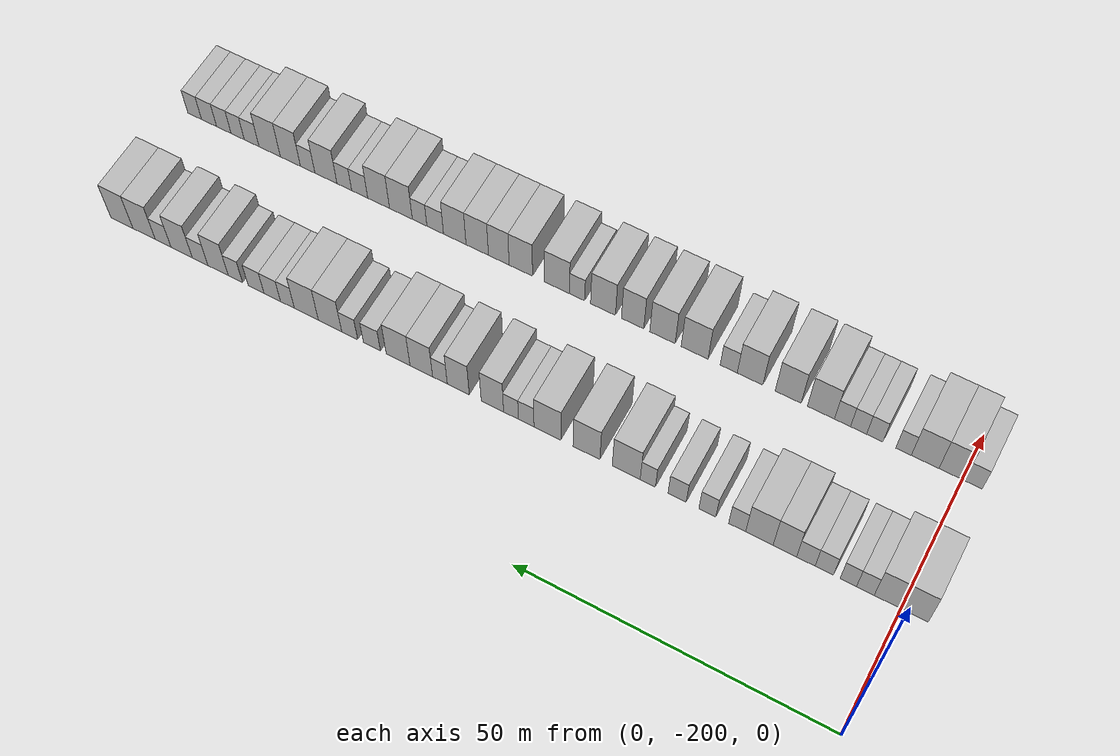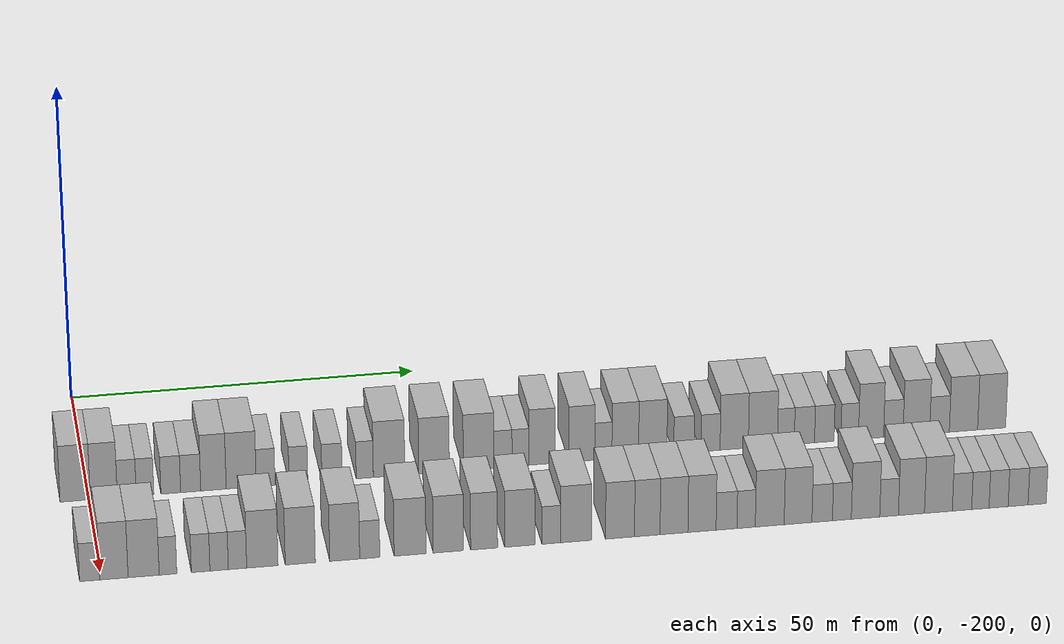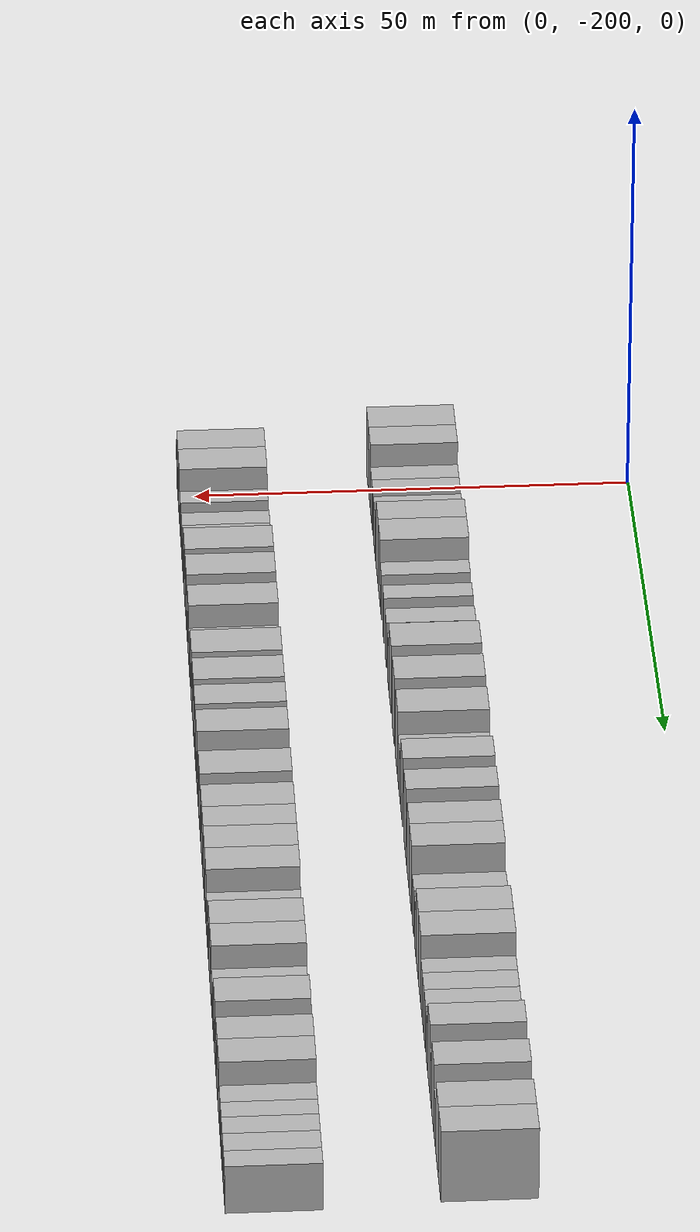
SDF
<sdf version="1.6">
 <world name="default">
  <model name="building_1">
   <static>1</static>
   <pose>25.0000 -201.8715 0 0.000000 0.000000 0.000000</pose>
   <link name="link">
    <pose>0 0 4.50 0 0 0</pose>
    <collision name="collision"><geometry><box><size>10.0000 4.2571 9.0000</size></box></geometry></collision>
    <visual name="visual">
     <cast_shadows>0</cast_shadows>
     <geometry><box><size>10.0000 4.2571 9.0000</size></box></geometry>
     <material>
      <script>
       <uri>model://HANNAS_wall/materials/scripts</uri>
       <uri>model://HANNAS_wall/materials/textures</uri>
       <name>vrc/HANNAS_wall</name>
      </script>
     </material>
    </visual>
   </link>
  </model>
  <model name="building_2">
   <static>1</static>
   <pose>25.0000 -197.8458 0 0.000000 0.000000 0.000000</pose>
   <link name="link">
    <pose>0 0 4.50 0 0 0</pose>
    <collision name="collision"><geometry><box><size>10.0000 3.7942 9.0000</size></box></geometry></collision>
    <visual name="visual">
     <cast_shadows>0</cast_shadows>
     <geometry><box><size>10.0000 3.7942 9.0000</size></box></geometry>
     <material>
      <script>
       <uri>model://HANNAS_wall/materials/scripts</uri>
       <uri>model://HANNAS_wall/materials/textures</uri>
       <name>vrc/HANNAS_wall</name>
      </script>
     </material>
    </visual>
   </link>
  </model>
  <model name="building_3">
   <static>1</static>
   <pose>25.0000 -194.6153 0 0.000000 0.000000 0.000000</pose>
   <link name="link">
    <pose>0 0 3.00 0 0 0</pose>
    <collision name="collision"><geometry><box><size>10.0000 2.6668 6.0000</size></box></geometry></collision>
    <visual name="visual">
     <cast_shadows>0</cast_shadows>
     <geometry><box><size>10.0000 2.6668 6.0000</size></box></geometry>
     <material>
      <script>
       <uri>model://HANNAS_wall/materials/scripts</uri>
       <uri>model://HANNAS_wall/materials/textures</uri>
       <name>vrc/HANNAS_wall</name>
      </script>
     </material>
    </visual>
   </link>
  </model>
  <model name="building_4">
   <static>1</static>
   <pose>25.0000 -192.0383 0 0.000000 0.000000 0.000000</pose>
   <link name="link">
    <pose>0 0 3.00 0 0 0</pose>
    <collision name="collision"><geometry><box><size>10.0000 2.4872 6.0000</size></box></geometry></collision>
    <visual name="visual">
     <cast_shadows>0</cast_shadows>
     <geometry><box><size>10.0000 2.4872 6.0000</size></box></geometry>
     <material>
      <script>
       <uri>model://HANNAS_wall/materials/scripts</uri>
       <uri>model://HANNAS_wall/materials/textures</uri>
       <name>vrc/HANNAS_wall</name>
      </script>
     </material>
    </visual>
   </link>
  </model>
  <model name="building_5">
   <static>1</static>
   <pose>25.0000 -188.4017 0 0.000000 0.000000 0.000000</pose>
   <link name="link">
    <pose>0 0 3.00 0 0 0</pose>
    <collision name="collision"><geometry><box><size>10.0000 2.7860 6.0000</size></box></geometry></collision>
    <visual name="visual">
     <cast_shadows>0</cast_shadows>
     <geometry><box><size>10.0000 2.7860 6.0000</size></box></geometry>
     <material>
      <script>
       <uri>model://HANNAS_wall/materials/scripts</uri>
       <uri>model://HANNAS_wall/materials/textures</uri>
       <name>vrc/HANNAS_wall</name>
      </script>
     </material>
    </visual>
   </link>
  </model>
  <model name="building_6">
   <static>1</static>
   <pose>25.0000 -185.5879 0 0.000000 0.000000 0.000000</pose>
   <link name="link">
    <pose>0 0 3.00 0 0 0</pose>
    <collision name="collision"><geometry><box><size>10.0000 2.8416 6.0000</size></box></geometry></collision>
    <visual name="visual">
     <cast_shadows>0</cast_shadows>
     <geometry><box><size>10.0000 2.8416 6.0000</size></box></geometry>
     <material>
      <script>
       <uri>model://HANNAS_wall/materials/scripts</uri>
       <uri>model://HANNAS_wall/materials/textures</uri>
       <name>vrc/HANNAS_wall</name>
      </script>
     </material>
    </visual>
   </link>
  </model>
  <model name="building_7">
   <static>1</static>
   <pose>25.0000 -182.3640 0 0.000000 0.000000 0.000000</pose>
   <link name="link">
    <pose>0 0 4.50 0 0 0</pose>
    <collision name="collision"><geometry><box><size>10.0000 3.6061 9.0000</size></box></geometry></collision>
    <visual name="visual">
     <cast_shadows>0</cast_shadows>
     <geometry><box><size>10.0000 3.6061 9.0000</size></box></geometry>
     <material>
      <script>
       <uri>model://HANNAS_wall/materials/scripts</uri>
       <uri>model://HANNAS_wall/materials/textures</uri>
       <name>vrc/HANNAS_wall</name>
      </script>
     </material>
    </visual>
   </link>
  </model>
  <model name="building_8">
   <static>1</static>
   <pose>25.0000 -178.4295 0 0.000000 0.000000 0.000000</pose>
   <link name="link">
    <pose>0 0 4.50 0 0 0</pose>
    <collision name="collision"><geometry><box><size>10.0000 4.2630 9.0000</size></box></geometry></collision>
    <visual name="visual">
     <cast_shadows>0</cast_shadows>
     <geometry><box><size>10.0000 4.2630 9.0000</size></box></geometry>
     <material>
      <script>
       <uri>model://HANNAS_wall/materials/scripts</uri>
       <uri>model://HANNAS_wall/materials/textures</uri>
       <name>vrc/HANNAS_wall</name>
      </script>
     </material>
    </visual>
   </link>
  </model>
  <model name="building_9">
   <static>1</static>
   <pose>25.0000 -174.9708 0 0.000000 0.000000 0.000000</pose>
   <link name="link">
    <pose>0 0 3.00 0 0 0</pose>
    <collision name="collision"><geometry><box><size>10.0000 2.6544 6.0000</size></box></geometry></collision>
    <visual name="visual">
     <cast_shadows>0</cast_shadows>
     <geometry><box><size>10.0000 2.6544 6.0000</size></box></geometry>
     <material>
      <script>
       <uri>model://HANNAS_wall/materials/scripts</uri>
       <uri>model://HANNAS_wall/materials/textures</uri>
       <name>vrc/HANNAS_wall</name>
      </script>
     </material>
    </visual>
   </link>
  </model>
  <model name="building_10">
   <static>1</static>
   <pose>25.0000 -170.3099 0 0.000000 0.000000 0.000000</pose>
   <link name="link">
    <pose>0 0 3.00 0 0 0</pose>
    <collision name="collision"><geometry><box><size>10.0000 2.6674 6.0000</size></box></geometry></collision>
    <visual name="visual">
     <cast_shadows>0</cast_shadows>
     <geometry><box><size>10.0000 2.6674 6.0000</size></box></geometry>
     <material>
      <script>
       <uri>model://HANNAS_wall/materials/scripts</uri>
       <uri>model://HANNAS_wall/materials/textures</uri>
       <name>vrc/HANNAS_wall</name>
      </script>
     </material>
    </visual>
   </link>
  </model>
  <model name="building_11">
   <static>1</static>
   <pose>25.0000 -165.5331 0 0.000000 0.000000 0.000000</pose>
   <link name="link">
    <pose>0 0 3.00 0 0 0</pose>
    <collision name="collision"><geometry><box><size>10.0000 2.8862 6.0000</size></box></geometry></collision>
    <visual name="visual">
     <cast_shadows>0</cast_shadows>
     <geometry><box><size>10.0000 2.8862 6.0000</size></box></geometry>
     <material>
      <script>
       <uri>model://HANNAS_wall/materials/scripts</uri>
       <uri>model://HANNAS_wall/materials/textures</uri>
       <name>vrc/HANNAS_wall</name>
      </script>
     </material>
    </visual>
   </link>
  </model>
  <model name="building_12">
   <static>1</static>
   <pose>25.0000 -160.8686 0 0.000000 0.000000 0.000000</pose>
   <link name="link">
    <pose>0 0 3.00 0 0 0</pose>
    <collision name="collision"><geometry><box><size>10.0000 2.4428 6.0000</size></box></geometry></collision>
    <visual name="visual">
     <cast_shadows>0</cast_shadows>
     <geometry><box><size>10.0000 2.4428 6.0000</size></box></geometry>
     <material>
      <script>
       <uri>model://HANNAS_wall/materials/scripts</uri>
       <uri>model://HANNAS_wall/materials/textures</uri>
       <name>vrc/HANNAS_wall</name>
      </script>
     </material>
    </visual>
   </link>
  </model>
  <model name="building_13">
   <static>1</static>
   <pose>25.0000 -157.4011 0 0.000000 0.000000 0.000000</pose>
   <link name="link">
    <pose>0 0 4.50 0 0 0</pose>
    <collision name="collision"><geometry><box><size>10.0000 4.4920 9.0000</size></box></geometry></collision>
    <visual name="visual">
     <cast_shadows>0</cast_shadows>
     <geometry><box><size>10.0000 4.4920 9.0000</size></box></geometry>
     <material>
      <script>
       <uri>model://HANNAS_wall/materials/scripts</uri>
       <uri>model://HANNAS_wall/materials/textures</uri>
       <name>vrc/HANNAS_wall</name>
      </script>
     </material>
    </visual>
   </link>
  </model>
  <model name="building_14">
   <static>1</static>
   <pose>25.0000 -150.9676 0 0.000000 0.000000 0.000000</pose>
   <link name="link">
    <pose>0 0 4.50 0 0 0</pose>
    <collision name="collision"><geometry><box><size>10.0000 4.3750 9.0000</size></box></geometry></collision>
    <visual name="visual">
     <cast_shadows>0</cast_shadows>
     <geometry><box><size>10.0000 4.3750 9.0000</size></box></geometry>
     <material>
      <script>
       <uri>model://HANNAS_wall/materials/scripts</uri>
       <uri>model://HANNAS_wall/materials/textures</uri>
       <name>vrc/HANNAS_wall</name>
      </script>
     </material>
    </visual>
   </link>
  </model>
  <model name="building_15">
   <static>1</static>
   <pose>25.0000 -144.5749 0 0.000000 0.000000 0.000000</pose>
   <link name="link">
    <pose>0 0 4.50 0 0 0</pose>
    <collision name="collision"><geometry><box><size>10.0000 4.4104 9.0000</size></box></geometry></collision>
    <visual name="visual">
     <cast_shadows>0</cast_shadows>
     <geometry><box><size>10.0000 4.4104 9.0000</size></box></geometry>
     <material>
      <script>
       <uri>model://HANNAS_wall/materials/scripts</uri>
       <uri>model://HANNAS_wall/materials/textures</uri>
       <name>vrc/HANNAS_wall</name>
      </script>
     </material>
    </visual>
   </link>
  </model>
  <model name="building_16">
   <static>1</static>
   <pose>25.0000 -141.0750 0 0.000000 0.000000 0.000000</pose>
   <link name="link">
    <pose>0 0 3.00 0 0 0</pose>
    <collision name="collision"><geometry><box><size>10.0000 2.5892 6.0000</size></box></geometry></collision>
    <visual name="visual">
     <cast_shadows>0</cast_shadows>
     <geometry><box><size>10.0000 2.5892 6.0000</size></box></geometry>
     <material>
      <script>
       <uri>model://HANNAS_wall/materials/scripts</uri>
       <uri>model://HANNAS_wall/materials/textures</uri>
       <name>vrc/HANNAS_wall</name>
      </script>
     </material>
    </visual>
   </link>
  </model>
  <model name="building_17">
   <static>1</static>
   <pose>25.0000 -138.5520 0 0.000000 0.000000 0.000000</pose>
   <link name="link">
    <pose>0 0 3.00 0 0 0</pose>
    <collision name="collision"><geometry><box><size>10.0000 2.4569 6.0000</size></box></geometry></collision>
    <visual name="visual">
     <cast_shadows>0</cast_shadows>
     <geometry><box><size>10.0000 2.4569 6.0000</size></box></geometry>
     <material>
      <script>
       <uri>model://HANNAS_wall/materials/scripts</uri>
       <uri>model://HANNAS_wall/materials/textures</uri>
       <name>vrc/HANNAS_wall</name>
      </script>
     </material>
    </visual>
   </link>
  </model>
  <model name="building_18">
   <static>1</static>
   <pose>25.0000 -135.4540 0 0.000000 0.000000 0.000000</pose>
   <link name="link">
    <pose>0 0 4.50 0 0 0</pose>
    <collision name="collision"><geometry><box><size>10.0000 3.7391 9.0000</size></box></geometry></collision>
    <visual name="visual">
     <cast_shadows>0</cast_shadows>
     <geometry><box><size>10.0000 3.7391 9.0000</size></box></geometry>
     <material>
      <script>
       <uri>model://HANNAS_wall/materials/scripts</uri>
       <uri>model://HANNAS_wall/materials/textures</uri>
       <name>vrc/HANNAS_wall</name>
      </script>
     </material>
    </visual>
   </link>
  </model>
  <model name="building_19">
   <static>1</static>
   <pose>25.0000 -129.7280 0 0.000000 0.000000 0.000000</pose>
   <link name="link">
    <pose>0 0 4.50 0 0 0</pose>
    <collision name="collision"><geometry><box><size>10.0000 3.7128 9.0000</size></box></geometry></collision>
    <visual name="visual">
     <cast_shadows>0</cast_shadows>
     <geometry><box><size>10.0000 3.7128 9.0000</size></box></geometry>
     <material>
      <script>
       <uri>model://HANNAS_wall/materials/scripts</uri>
       <uri>model://HANNAS_wall/materials/textures</uri>
       <name>vrc/HANNAS_wall</name>
      </script>
     </material>
    </visual>
   </link>
  </model>
  <model name="building_20">
   <static>1</static>
   <pose>25.0000 -126.6309 0 0.000000 0.000000 0.000000</pose>
   <link name="link">
    <pose>0 0 3.00 0 0 0</pose>
    <collision name="collision"><geometry><box><size>10.0000 2.4814 6.0000</size></box></geometry></collision>
    <visual name="visual">
     <cast_shadows>0</cast_shadows>
     <geometry><box><size>10.0000 2.4814 6.0000</size></box></geometry>
     <material>
      <script>
       <uri>model://HANNAS_wall/materials/scripts</uri>
       <uri>model://HANNAS_wall/materials/textures</uri>
       <name>vrc/HANNAS_wall</name>
      </script>
     </material>
    </visual>
   </link>
  </model>
  <model name="building_21">
   <static>1</static>
   <pose>25.0000 -123.4586 0 0.000000 0.000000 0.000000</pose>
   <link name="link">
    <pose>0 0 4.50 0 0 0</pose>
    <collision name="collision"><geometry><box><size>10.0000 3.8633 9.0000</size></box></geometry></collision>
    <visual name="visual">
     <cast_shadows>0</cast_shadows>
     <geometry><box><size>10.0000 3.8633 9.0000</size></box></geometry>
     <material>
      <script>
       <uri>model://HANNAS_wall/materials/scripts</uri>
       <uri>model://HANNAS_wall/materials/textures</uri>
       <name>vrc/HANNAS_wall</name>
      </script>
     </material>
    </visual>
   </link>
  </model>
  <model name="building_22">
   <static>1</static>
   <pose>25.0000 -119.4799 0 0.000000 0.000000 0.000000</pose>
   <link name="link">
    <pose>0 0 4.50 0 0 0</pose>
    <collision name="collision"><geometry><box><size>10.0000 4.0941 9.0000</size></box></geometry></collision>
    <visual name="visual">
     <cast_shadows>0</cast_shadows>
     <geometry><box><size>10.0000 4.0941 9.0000</size></box></geometry>
     <material>
      <script>
       <uri>model://HANNAS_wall/materials/scripts</uri>
       <uri>model://HANNAS_wall/materials/textures</uri>
       <name>vrc/HANNAS_wall</name>
      </script>
     </material>
    </visual>
   </link>
  </model>
  <model name="building_23">
   <static>1</static>
   <pose>25.0000 -114.9615 0 0.000000 0.000000 0.000000</pose>
   <link name="link">
    <pose>0 0 3.00 0 0 0</pose>
    <collision name="collision"><geometry><box><size>10.0000 2.9427 6.0000</size></box></geometry></collision>
    <visual name="visual">
     <cast_shadows>0</cast_shadows>
     <geometry><box><size>10.0000 2.9427 6.0000</size></box></geometry>
     <material>
      <script>
       <uri>model://HANNAS_wall/materials/scripts</uri>
       <uri>model://HANNAS_wall/materials/textures</uri>
       <name>vrc/HANNAS_wall</name>
      </script>
     </material>
    </visual>
   </link>
  </model>
  <model name="building_24">
   <static>1</static>
   <pose>25.0000 -111.1020 0 0.000000 0.000000 0.000000</pose>
   <link name="link">
    <pose>0 0 3.00 0 0 0</pose>
    <collision name="collision"><geometry><box><size>10.0000 2.7763 6.0000</size></box></geometry></collision>
    <visual name="visual">
     <cast_shadows>0</cast_shadows>
     <geometry><box><size>10.0000 2.7763 6.0000</size></box></geometry>
     <material>
      <script>
       <uri>model://HANNAS_wall/materials/scripts</uri>
       <uri>model://HANNAS_wall/materials/textures</uri>
       <name>vrc/HANNAS_wall</name>
      </script>
     </material>
    </visual>
   </link>
  </model>
  <model name="building_25">
   <static>1</static>
   <pose>25.0000 -107.6616 0 0.000000 0.000000 0.000000</pose>
   <link name="link">
    <pose>0 0 4.50 0 0 0</pose>
    <collision name="collision"><geometry><box><size>10.0000 4.1044 9.0000</size></box></geometry></collision>
    <visual name="visual">
     <cast_shadows>0</cast_shadows>
     <geometry><box><size>10.0000 4.1044 9.0000</size></box></geometry>
     <material>
      <script>
       <uri>model://HANNAS_wall/materials/scripts</uri>
       <uri>model://HANNAS_wall/materials/textures</uri>
       <name>vrc/HANNAS_wall</name>
      </script>
     </material>
    </visual>
   </link>
  </model>
  <model name="building_26">
   <static>1</static>
   <pose>25.0000 -103.4904 0 0.000000 0.000000 0.000000</pose>
   <link name="link">
    <pose>0 0 4.50 0 0 0</pose>
    <collision name="collision"><geometry><box><size>10.0000 4.2381 9.0000</size></box></geometry></collision>
    <visual name="visual">
     <cast_shadows>0</cast_shadows>
     <geometry><box><size>10.0000 4.2381 9.0000</size></box></geometry>
     <material>
      <script>
       <uri>model://HANNAS_wall/materials/scripts</uri>
       <uri>model://HANNAS_wall/materials/textures</uri>
       <name>vrc/HANNAS_wall</name>
      </script>
     </material>
    </visual>
   </link>
  </model>
  <model name="building_27">
   <static>1</static>
   <pose>25.0000 -100.1394 0 0.000000 0.000000 0.000000</pose>
   <link name="link">
    <pose>0 0 3.00 0 0 0</pose>
    <collision name="collision"><geometry><box><size>10.0000 2.4638 6.0000</size></box></geometry></collision>
    <visual name="visual">
     <cast_shadows>0</cast_shadows>
     <geometry><box><size>10.0000 2.4638 6.0000</size></box></geometry>
     <material>
      <script>
       <uri>model://HANNAS_wall/materials/scripts</uri>
       <uri>model://HANNAS_wall/materials/textures</uri>
       <name>vrc/HANNAS_wall</name>
      </script>
     </material>
    </visual>
   </link>
  </model>
  <model name="building_28">
   <static>1</static>
   <pose>25.0000 -97.4309 0 0.000000 0.000000 0.000000</pose>
   <link name="link">
    <pose>0 0 3.00 0 0 0</pose>
    <collision name="collision"><geometry><box><size>10.0000 2.9532 6.0000</size></box></geometry></collision>
    <visual name="visual">
     <cast_shadows>0</cast_shadows>
     <geometry><box><size>10.0000 2.9532 6.0000</size></box></geometry>
     <material>
      <script>
       <uri>model://HANNAS_wall/materials/scripts</uri>
       <uri>model://HANNAS_wall/materials/textures</uri>
       <name>vrc/HANNAS_wall</name>
      </script>
     </material>
    </visual>
   </link>
  </model>
  <model name="building_29">
   <static>1</static>
   <pose>25.0000 -94.5324 0 0.000000 0.000000 0.000000</pose>
   <link name="link">
    <pose>0 0 3.00 0 0 0</pose>
    <collision name="collision"><geometry><box><size>10.0000 2.8439 6.0000</size></box></geometry></collision>
    <visual name="visual">
     <cast_shadows>0</cast_shadows>
     <geometry><box><size>10.0000 2.8439 6.0000</size></box></geometry>
     <material>
      <script>
       <uri>model://HANNAS_wall/materials/scripts</uri>
       <uri>model://HANNAS_wall/materials/textures</uri>
       <name>vrc/HANNAS_wall</name>
      </script>
     </material>
    </visual>
   </link>
  </model>
  <model name="building_30">
   <static>1</static>
   <pose>25.0000 -90.8245 0 0.000000 0.000000 0.000000</pose>
   <link name="link">
    <pose>0 0 3.00 0 0 0</pose>
    <collision name="collision"><geometry><box><size>10.0000 2.5719 6.0000</size></box></geometry></collision>
    <visual name="visual">
     <cast_shadows>0</cast_shadows>
     <geometry><box><size>10.0000 2.5719 6.0000</size></box></geometry>
     <material>
      <script>
       <uri>model://HANNAS_wall/materials/scripts</uri>
       <uri>model://HANNAS_wall/materials/textures</uri>
       <name>vrc/HANNAS_wall</name>
      </script>
     </material>
    </visual>
   </link>
  </model>
  <model name="building_31">
   <static>1</static>
   <pose>25.0000 -87.6976 0 0.000000 0.000000 0.000000</pose>
   <link name="link">
    <pose>0 0 4.50 0 0 0</pose>
    <collision name="collision"><geometry><box><size>10.0000 3.6820 9.0000</size></box></geometry></collision>
    <visual name="visual">
     <cast_shadows>0</cast_shadows>
     <geometry><box><size>10.0000 3.6820 9.0000</size></box></geometry>
     <material>
      <script>
       <uri>model://HANNAS_wall/materials/scripts</uri>
       <uri>model://HANNAS_wall/materials/textures</uri>
       <name>vrc/HANNAS_wall</name>
      </script>
     </material>
    </visual>
   </link>
  </model>
  <model name="building_32">
   <static>1</static>
   <pose>25.0000 -84.4292 0 0.000000 0.000000 0.000000</pose>
   <link name="link">
    <pose>0 0 3.00 0 0 0</pose>
    <collision name="collision"><geometry><box><size>10.0000 2.8549 6.0000</size></box></geometry></collision>
    <visual name="visual">
     <cast_shadows>0</cast_shadows>
     <geometry><box><size>10.0000 2.8549 6.0000</size></box></geometry>
     <material>
      <script>
       <uri>model://HANNAS_wall/materials/scripts</uri>
       <uri>model://HANNAS_wall/materials/textures</uri>
       <name>vrc/HANNAS_wall</name>
      </script>
     </material>
    </visual>
   </link>
  </model>
  <model name="building_33">
   <static>1</static>
   <pose>25.0000 -81.0458 0 0.000000 0.000000 0.000000</pose>
   <link name="link">
    <pose>0 0 4.50 0 0 0</pose>
    <collision name="collision"><geometry><box><size>10.0000 3.9118 9.0000</size></box></geometry></collision>
    <visual name="visual">
     <cast_shadows>0</cast_shadows>
     <geometry><box><size>10.0000 3.9118 9.0000</size></box></geometry>
     <material>
      <script>
       <uri>model://HANNAS_wall/materials/scripts</uri>
       <uri>model://HANNAS_wall/materials/textures</uri>
       <name>vrc/HANNAS_wall</name>
      </script>
     </material>
    </visual>
   </link>
  </model>
  <model name="building_34">
   <static>1</static>
   <pose>25.0000 -77.6416 0 0.000000 0.000000 0.000000</pose>
   <link name="link">
    <pose>0 0 3.00 0 0 0</pose>
    <collision name="collision"><geometry><box><size>10.0000 2.8966 6.0000</size></box></geometry></collision>
    <visual name="visual">
     <cast_shadows>0</cast_shadows>
     <geometry><box><size>10.0000 2.8966 6.0000</size></box></geometry>
     <material>
      <script>
       <uri>model://HANNAS_wall/materials/scripts</uri>
       <uri>model://HANNAS_wall/materials/textures</uri>
       <name>vrc/HANNAS_wall</name>
      </script>
     </material>
    </visual>
   </link>
  </model>
  <model name="building_35">
   <static>1</static>
   <pose>25.0000 -74.1126 0 0.000000 0.000000 0.000000</pose>
   <link name="link">
    <pose>0 0 4.50 0 0 0</pose>
    <collision name="collision"><geometry><box><size>10.0000 4.1612 9.0000</size></box></geometry></collision>
    <visual name="visual">
     <cast_shadows>0</cast_shadows>
     <geometry><box><size>10.0000 4.1612 9.0000</size></box></geometry>
     <material>
      <script>
       <uri>model://HANNAS_wall/materials/scripts</uri>
       <uri>model://HANNAS_wall/materials/textures</uri>
       <name>vrc/HANNAS_wall</name>
      </script>
     </material>
    </visual>
   </link>
  </model>
  <model name="building_36">
   <static>1</static>
   <pose>25.0000 -69.9689 0 0.000000 0.000000 0.000000</pose>
   <link name="link">
    <pose>0 0 4.50 0 0 0</pose>
    <collision name="collision"><geometry><box><size>10.0000 4.1262 9.0000</size></box></geometry></collision>
    <visual name="visual">
     <cast_shadows>0</cast_shadows>
     <geometry><box><size>10.0000 4.1262 9.0000</size></box></geometry>
     <material>
      <script>
       <uri>model://HANNAS_wall/materials/scripts</uri>
       <uri>model://HANNAS_wall/materials/textures</uri>
       <name>vrc/HANNAS_wall</name>
      </script>
     </material>
    </visual>
   </link>
  </model>
  <model name="building_105">
   <static>1</static>
   <pose>47.0000 -201.6299 0 0.000000 0.000000 0.000000</pose>
   <link name="link">
    <pose>0 0 3.00 0 0 0</pose>
    <collision name="collision"><geometry><box><size>10.0000 2.7403 6.0000</size></box></geometry></collision>
    <visual name="visual">
     <cast_shadows>0</cast_shadows>
     <geometry><box><size>10.0000 2.7403 6.0000</size></box></geometry>
     <material>
      <script>
       <uri>model://HANNAS_wall/materials/scripts</uri>
       <uri>model://HANNAS_wall/materials/textures</uri>
       <name>vrc/HANNAS_wall</name>
      </script>
     </material>
    </visual>
   </link>
  </model>
  <model name="building_106">
   <static>1</static>
   <pose>47.0000 -198.3048 0 0.000000 0.000000 0.000000</pose>
   <link name="link">
    <pose>0 0 4.50 0 0 0</pose>
    <collision name="collision"><geometry><box><size>10.0000 3.9098 9.0000</size></box></geometry></collision>
    <visual name="visual">
     <cast_shadows>0</cast_shadows>
     <geometry><box><size>10.0000 3.9098 9.0000</size></box></geometry>
     <material>
      <script>
       <uri>model://HANNAS_wall/materials/scripts</uri>
       <uri>model://HANNAS_wall/materials/textures</uri>
       <name>vrc/HANNAS_wall</name>
      </script>
     </material>
    </visual>
   </link>
  </model>
  <model name="building_107">
   <static>1</static>
   <pose>47.0000 -194.2144 0 0.000000 0.000000 0.000000</pose>
   <link name="link">
    <pose>0 0 4.50 0 0 0</pose>
    <collision name="collision"><geometry><box><size>10.0000 4.2709 9.0000</size></box></geometry></collision>
    <visual name="visual">
     <cast_shadows>0</cast_shadows>
     <geometry><box><size>10.0000 4.2709 9.0000</size></box></geometry>
     <material>
      <script>
       <uri>model://HANNAS_wall/materials/scripts</uri>
       <uri>model://HANNAS_wall/materials/textures</uri>
       <name>vrc/HANNAS_wall</name>
      </script>
     </material>
    </visual>
   </link>
  </model>
  <model name="building_108">
   <static>1</static>
   <pose>47.0000 -190.8659 0 0.000000 0.000000 0.000000</pose>
   <link name="link">
    <pose>0 0 3.00 0 0 0</pose>
    <collision name="collision"><geometry><box><size>10.0000 2.4263 6.0000</size></box></geometry></collision>
    <visual name="visual">
     <cast_shadows>0</cast_shadows>
     <geometry><box><size>10.0000 2.4263 6.0000</size></box></geometry>
     <material>
      <script>
       <uri>model://HANNAS_wall/materials/scripts</uri>
       <uri>model://HANNAS_wall/materials/textures</uri>
       <name>vrc/HANNAS_wall</name>
      </script>
     </material>
    </visual>
   </link>
  </model>
  <model name="building_109">
   <static>1</static>
   <pose>47.0000 -186.3735 0 0.000000 0.000000 0.000000</pose>
   <link name="link">
    <pose>0 0 3.00 0 0 0</pose>
    <collision name="collision"><geometry><box><size>10.0000 2.5584 6.0000</size></box></geometry></collision>
    <visual name="visual">
     <cast_shadows>0</cast_shadows>
     <geometry><box><size>10.0000 2.5584 6.0000</size></box></geometry>
     <material>
      <script>
       <uri>model://HANNAS_wall/materials/scripts</uri>
       <uri>model://HANNAS_wall/materials/textures</uri>
       <name>vrc/HANNAS_wall</name>
      </script>
     </material>
    </visual>
   </link>
  </model>
  <model name="building_110">
   <static>1</static>
   <pose>47.0000 -183.8255 0 0.000000 0.000000 0.000000</pose>
   <link name="link">
    <pose>0 0 3.00 0 0 0</pose>
    <collision name="collision"><geometry><box><size>10.0000 2.5377 6.0000</size></box></geometry></collision>
    <visual name="visual">
     <cast_shadows>0</cast_shadows>
     <geometry><box><size>10.0000 2.5377 6.0000</size></box></geometry>
     <material>
      <script>
       <uri>model://HANNAS_wall/materials/scripts</uri>
       <uri>model://HANNAS_wall/materials/textures</uri>
       <name>vrc/HANNAS_wall</name>
      </script>
     </material>
    </visual>
   </link>
  </model>
  <model name="building_111">
   <static>1</static>
   <pose>47.0000 -181.2904 0 0.000000 0.000000 0.000000</pose>
   <link name="link">
    <pose>0 0 3.00 0 0 0</pose>
    <collision name="collision"><geometry><box><size>10.0000 2.5325 6.0000</size></box></geometry></collision>
    <visual name="visual">
     <cast_shadows>0</cast_shadows>
     <geometry><box><size>10.0000 2.5325 6.0000</size></box></geometry>
     <material>
      <script>
       <uri>model://HANNAS_wall/materials/scripts</uri>
       <uri>model://HANNAS_wall/materials/textures</uri>
       <name>vrc/HANNAS_wall</name>
      </script>
     </material>
    </visual>
   </link>
  </model>
  <model name="building_112">
   <static>1</static>
   <pose>47.0000 -177.8555 0 0.000000 0.000000 0.000000</pose>
   <link name="link">
    <pose>0 0 4.50 0 0 0</pose>
    <collision name="collision"><geometry><box><size>10.0000 4.3372 9.0000</size></box></geometry></collision>
    <visual name="visual">
     <cast_shadows>0</cast_shadows>
     <geometry><box><size>10.0000 4.3372 9.0000</size></box></geometry>
     <material>
      <script>
       <uri>model://HANNAS_wall/materials/scripts</uri>
       <uri>model://HANNAS_wall/materials/textures</uri>
       <name>vrc/HANNAS_wall</name>
      </script>
     </material>
    </visual>
   </link>
  </model>
  <model name="building_113">
   <static>1</static>
   <pose>47.0000 -172.6046 0 0.000000 0.000000 0.000000</pose>
   <link name="link">
    <pose>0 0 4.50 0 0 0</pose>
    <collision name="collision"><geometry><box><size>10.0000 4.1647 9.0000</size></box></geometry></collision>
    <visual name="visual">
     <cast_shadows>0</cast_shadows>
     <geometry><box><size>10.0000 4.1647 9.0000</size></box></geometry>
     <material>
      <script>
       <uri>model://HANNAS_wall/materials/scripts</uri>
       <uri>model://HANNAS_wall/materials/textures</uri>
       <name>vrc/HANNAS_wall</name>
      </script>
     </material>
    </visual>
   </link>
  </model>
  <model name="building_114">
   <static>1</static>
   <pose>47.0000 -166.4464 0 0.000000 0.000000 0.000000</pose>
   <link name="link">
    <pose>0 0 4.50 0 0 0</pose>
    <collision name="collision"><geometry><box><size>10.0000 4.1516 9.0000</size></box></geometry></collision>
    <visual name="visual">
     <cast_shadows>0</cast_shadows>
     <geometry><box><size>10.0000 4.1516 9.0000</size></box></geometry>
     <material>
      <script>
       <uri>model://HANNAS_wall/materials/scripts</uri>
       <uri>model://HANNAS_wall/materials/textures</uri>
       <name>vrc/HANNAS_wall</name>
      </script>
     </material>
    </visual>
   </link>
  </model>
  <model name="building_115">
   <static>1</static>
   <pose>47.0000 -162.9767 0 0.000000 0.000000 0.000000</pose>
   <link name="link">
    <pose>0 0 3.00 0 0 0</pose>
    <collision name="collision"><geometry><box><size>10.0000 2.7878 6.0000</size></box></geometry></collision>
    <visual name="visual">
     <cast_shadows>0</cast_shadows>
     <geometry><box><size>10.0000 2.7878 6.0000</size></box></geometry>
     <material>
      <script>
       <uri>model://HANNAS_wall/materials/scripts</uri>
       <uri>model://HANNAS_wall/materials/textures</uri>
       <name>vrc/HANNAS_wall</name>
      </script>
     </material>
    </visual>
   </link>
  </model>
  <model name="building_116">
   <static>1</static>
   <pose>47.0000 -157.3597 0 0.000000 0.000000 0.000000</pose>
   <link name="link">
    <pose>0 0 4.50 0 0 0</pose>
    <collision name="collision"><geometry><box><size>10.0000 4.4462 9.0000</size></box></geometry></collision>
    <visual name="visual">
     <cast_shadows>0</cast_shadows>
     <geometry><box><size>10.0000 4.4462 9.0000</size></box></geometry>
     <material>
      <script>
       <uri>model://HANNAS_wall/materials/scripts</uri>
       <uri>model://HANNAS_wall/materials/textures</uri>
       <name>vrc/HANNAS_wall</name>
      </script>
     </material>
    </visual>
   </link>
  </model>
  <model name="building_117">
   <static>1</static>
   <pose>47.0000 -152.0263 0 0.000000 0.000000 0.000000</pose>
   <link name="link">
    <pose>0 0 4.50 0 0 0</pose>
    <collision name="collision"><geometry><box><size>10.0000 4.2205 9.0000</size></box></geometry></collision>
    <visual name="visual">
     <cast_shadows>0</cast_shadows>
     <geometry><box><size>10.0000 4.2205 9.0000</size></box></geometry>
     <material>
      <script>
       <uri>model://HANNAS_wall/materials/scripts</uri>
       <uri>model://HANNAS_wall/materials/textures</uri>
       <name>vrc/HANNAS_wall</name>
      </script>
     </material>
    </visual>
   </link>
  </model>
  <model name="building_118">
   <static>1</static>
   <pose>47.0000 -147.0375 0 0.000000 0.000000 0.000000</pose>
   <link name="link">
    <pose>0 0 4.50 0 0 0</pose>
    <collision name="collision"><geometry><box><size>10.0000 3.7571 9.0000</size></box></geometry></collision>
    <visual name="visual">
     <cast_shadows>0</cast_shadows>
     <geometry><box><size>10.0000 3.7571 9.0000</size></box></geometry>
     <material>
      <script>
       <uri>model://HANNAS_wall/materials/scripts</uri>
       <uri>model://HANNAS_wall/materials/textures</uri>
       <name>vrc/HANNAS_wall</name>
      </script>
     </material>
    </visual>
   </link>
  </model>
  <model name="building_119">
   <static>1</static>
   <pose>47.0000 -142.0481 0 0.000000 0.000000 0.000000</pose>
   <link name="link">
    <pose>0 0 4.50 0 0 0</pose>
    <collision name="collision"><geometry><box><size>10.0000 4.2217 9.0000</size></box></geometry></collision>
    <visual name="visual">
     <cast_shadows>0</cast_shadows>
     <geometry><box><size>10.0000 4.2217 9.0000</size></box></geometry>
     <material>
      <script>
       <uri>model://HANNAS_wall/materials/scripts</uri>
       <uri>model://HANNAS_wall/materials/textures</uri>
       <name>vrc/HANNAS_wall</name>
      </script>
     </material>
    </visual>
   </link>
  </model>
  <model name="building_120">
   <static>1</static>
   <pose>47.0000 -137.6356 0 0.000000 0.000000 0.000000</pose>
   <link name="link">
    <pose>0 0 3.00 0 0 0</pose>
    <collision name="collision"><geometry><box><size>10.0000 2.6033 6.0000</size></box></geometry></collision>
    <visual name="visual">
     <cast_shadows>0</cast_shadows>
     <geometry><box><size>10.0000 2.6033 6.0000</size></box></geometry>
     <material>
      <script>
       <uri>model://HANNAS_wall/materials/scripts</uri>
       <uri>model://HANNAS_wall/materials/textures</uri>
       <name>vrc/HANNAS_wall</name>
      </script>
     </material>
    </visual>
   </link>
  </model>
  <model name="building_121">
   <static>1</static>
   <pose>47.0000 -134.1650 0 0.000000 0.000000 0.000000</pose>
   <link name="link">
    <pose>0 0 4.50 0 0 0</pose>
    <collision name="collision"><geometry><box><size>10.0000 4.3380 9.0000</size></box></geometry></collision>
    <visual name="visual">
     <cast_shadows>0</cast_shadows>
     <geometry><box><size>10.0000 4.3380 9.0000</size></box></geometry>
     <material>
      <script>
       <uri>model://HANNAS_wall/materials/scripts</uri>
       <uri>model://HANNAS_wall/materials/textures</uri>
       <name>vrc/HANNAS_wall</name>
      </script>
     </material>
    </visual>
   </link>
  </model>
  <model name="building_122">
   <static>1</static>
   <pose>47.0000 -127.9601 0 0.000000 0.000000 0.000000</pose>
   <link name="link">
    <pose>0 0 4.50 0 0 0</pose>
    <collision name="collision"><geometry><box><size>10.0000 4.0719 9.0000</size></box></geometry></collision>
    <visual name="visual">
     <cast_shadows>0</cast_shadows>
     <geometry><box><size>10.0000 4.0719 9.0000</size></box></geometry>
     <material>
      <script>
       <uri>model://HANNAS_wall/materials/scripts</uri>
       <uri>model://HANNAS_wall/materials/textures</uri>
       <name>vrc/HANNAS_wall</name>
      </script>
     </material>
    </visual>
   </link>
  </model>
  <model name="building_123">
   <static>1</static>
   <pose>47.0000 -124.1219 0 0.000000 0.000000 0.000000</pose>
   <link name="link">
    <pose>0 0 4.50 0 0 0</pose>
    <collision name="collision"><geometry><box><size>10.0000 3.6044 9.0000</size></box></geometry></collision>
    <visual name="visual">
     <cast_shadows>0</cast_shadows>
     <geometry><box><size>10.0000 3.6044 9.0000</size></box></geometry>
     <material>
      <script>
       <uri>model://HANNAS_wall/materials/scripts</uri>
       <uri>model://HANNAS_wall/materials/textures</uri>
       <name>vrc/HANNAS_wall</name>
      </script>
     </material>
    </visual>
   </link>
  </model>
  <model name="building_124">
   <static>1</static>
   <pose>47.0000 -120.3532 0 0.000000 0.000000 0.000000</pose>
   <link name="link">
    <pose>0 0 4.50 0 0 0</pose>
    <collision name="collision"><geometry><box><size>10.0000 3.9330 9.0000</size></box></geometry></collision>
    <visual name="visual">
     <cast_shadows>0</cast_shadows>
     <geometry><box><size>10.0000 3.9330 9.0000</size></box></geometry>
     <material>
      <script>
       <uri>model://HANNAS_wall/materials/scripts</uri>
       <uri>model://HANNAS_wall/materials/textures</uri>
       <name>vrc/HANNAS_wall</name>
      </script>
     </material>
    </visual>
   </link>
  </model>
  <model name="building_125">
   <static>1</static>
   <pose>47.0000 -116.3970 0 0.000000 0.000000 0.000000</pose>
   <link name="link">
    <pose>0 0 4.50 0 0 0</pose>
    <collision name="collision"><geometry><box><size>10.0000 3.9794 9.0000</size></box></geometry></collision>
    <visual name="visual">
     <cast_shadows>0</cast_shadows>
     <geometry><box><size>10.0000 3.9794 9.0000</size></box></geometry>
     <material>
      <script>
       <uri>model://HANNAS_wall/materials/scripts</uri>
       <uri>model://HANNAS_wall/materials/textures</uri>
       <name>vrc/HANNAS_wall</name>
      </script>
     </material>
    </visual>
   </link>
  </model>
  <model name="building_126">
   <static>1</static>
   <pose>47.0000 -112.9272 0 0.000000 0.000000 0.000000</pose>
   <link name="link">
    <pose>0 0 3.00 0 0 0</pose>
    <collision name="collision"><geometry><box><size>10.0000 2.9603 6.0000</size></box></geometry></collision>
    <visual name="visual">
     <cast_shadows>0</cast_shadows>
     <geometry><box><size>10.0000 2.9603 6.0000</size></box></geometry>
     <material>
      <script>
       <uri>model://HANNAS_wall/materials/scripts</uri>
       <uri>model://HANNAS_wall/materials/textures</uri>
       <name>vrc/HANNAS_wall</name>
      </script>
     </material>
    </visual>
   </link>
  </model>
  <model name="building_127">
   <static>1</static>
   <pose>47.0000 -110.1485 0 0.000000 0.000000 0.000000</pose>
   <link name="link">
    <pose>0 0 3.00 0 0 0</pose>
    <collision name="collision"><geometry><box><size>10.0000 2.5971 6.0000</size></box></geometry></collision>
    <visual name="visual">
     <cast_shadows>0</cast_shadows>
     <geometry><box><size>10.0000 2.5971 6.0000</size></box></geometry>
     <material>
      <script>
       <uri>model://HANNAS_wall/materials/scripts</uri>
       <uri>model://HANNAS_wall/materials/textures</uri>
       <name>vrc/HANNAS_wall</name>
      </script>
     </material>
    </visual>
   </link>
  </model>
  <model name="building_128">
   <static>1</static>
   <pose>47.0000 -106.8024 0 0.000000 0.000000 0.000000</pose>
   <link name="link">
    <pose>0 0 4.50 0 0 0</pose>
    <collision name="collision"><geometry><box><size>10.0000 4.0951 9.0000</size></box></geometry></collision>
    <visual name="visual">
     <cast_shadows>0</cast_shadows>
     <geometry><box><size>10.0000 4.0951 9.0000</size></box></geometry>
     <material>
      <script>
       <uri>model://HANNAS_wall/materials/scripts</uri>
       <uri>model://HANNAS_wall/materials/textures</uri>
       <name>vrc/HANNAS_wall</name>
      </script>
     </material>
    </visual>
   </link>
  </model>
  <model name="building_129">
   <static>1</static>
   <pose>47.0000 -102.7803 0 0.000000 0.000000 0.000000</pose>
   <link name="link">
    <pose>0 0 4.50 0 0 0</pose>
    <collision name="collision"><geometry><box><size>10.0000 3.9491 9.0000</size></box></geometry></collision>
    <visual name="visual">
     <cast_shadows>0</cast_shadows>
     <geometry><box><size>10.0000 3.9491 9.0000</size></box></geometry>
     <material>
      <script>
       <uri>model://HANNAS_wall/materials/scripts</uri>
       <uri>model://HANNAS_wall/materials/textures</uri>
       <name>vrc/HANNAS_wall</name>
      </script>
     </material>
    </visual>
   </link>
  </model>
  <model name="building_130">
   <static>1</static>
   <pose>47.0000 -99.3492 0 0.000000 0.000000 0.000000</pose>
   <link name="link">
    <pose>0 0 3.00 0 0 0</pose>
    <collision name="collision"><geometry><box><size>10.0000 2.9129 6.0000</size></box></geometry></collision>
    <visual name="visual">
     <cast_shadows>0</cast_shadows>
     <geometry><box><size>10.0000 2.9129 6.0000</size></box></geometry>
     <material>
      <script>
       <uri>model://HANNAS_wall/materials/scripts</uri>
       <uri>model://HANNAS_wall/materials/textures</uri>
       <name>vrc/HANNAS_wall</name>
      </script>
     </material>
    </visual>
   </link>
  </model>
  <model name="building_131">
   <static>1</static>
   <pose>47.0000 -96.5466 0 0.000000 0.000000 0.000000</pose>
   <link name="link">
    <pose>0 0 3.00 0 0 0</pose>
    <collision name="collision"><geometry><box><size>10.0000 2.6924 6.0000</size></box></geometry></collision>
    <visual name="visual">
     <cast_shadows>0</cast_shadows>
     <geometry><box><size>10.0000 2.6924 6.0000</size></box></geometry>
     <material>
      <script>
       <uri>model://HANNAS_wall/materials/scripts</uri>
       <uri>model://HANNAS_wall/materials/textures</uri>
       <name>vrc/HANNAS_wall</name>
      </script>
     </material>
    </visual>
   </link>
  </model>
  <model name="building_132">
   <static>1</static>
   <pose>47.0000 -93.1731 0 0.000000 0.000000 0.000000</pose>
   <link name="link">
    <pose>0 0 4.50 0 0 0</pose>
    <collision name="collision"><geometry><box><size>10.0000 4.0545 9.0000</size></box></geometry></collision>
    <visual name="visual">
     <cast_shadows>0</cast_shadows>
     <geometry><box><size>10.0000 4.0545 9.0000</size></box></geometry>
     <material>
      <script>
       <uri>model://HANNAS_wall/materials/scripts</uri>
       <uri>model://HANNAS_wall/materials/textures</uri>
       <name>vrc/HANNAS_wall</name>
      </script>
     </material>
    </visual>
   </link>
  </model>
  <model name="building_133">
   <static>1</static>
   <pose>47.0000 -89.8118 0 0.000000 0.000000 0.000000</pose>
   <link name="link">
    <pose>0 0 3.00 0 0 0</pose>
    <collision name="collision"><geometry><box><size>10.0000 2.6682 6.0000</size></box></geometry></collision>
    <visual name="visual">
     <cast_shadows>0</cast_shadows>
     <geometry><box><size>10.0000 2.6682 6.0000</size></box></geometry>
     <material>
      <script>
       <uri>model://HANNAS_wall/materials/scripts</uri>
       <uri>model://HANNAS_wall/materials/textures</uri>
       <name>vrc/HANNAS_wall</name>
      </script>
     </material>
    </visual>
   </link>
  </model>
  <model name="building_134">
   <static>1</static>
   <pose>47.0000 -86.6137 0 0.000000 0.000000 0.000000</pose>
   <link name="link">
    <pose>0 0 4.50 0 0 0</pose>
    <collision name="collision"><geometry><box><size>10.0000 3.7279 9.0000</size></box></geometry></collision>
    <visual name="visual">
     <cast_shadows>0</cast_shadows>
     <geometry><box><size>10.0000 3.7279 9.0000</size></box></geometry>
     <material>
      <script>
       <uri>model://HANNAS_wall/materials/scripts</uri>
       <uri>model://HANNAS_wall/materials/textures</uri>
       <name>vrc/HANNAS_wall</name>
      </script>
     </material>
    </visual>
   </link>
  </model>
  <model name="building_135">
   <static>1</static>
   <pose>47.0000 -82.7559 0 0.000000 0.000000 0.000000</pose>
   <link name="link">
    <pose>0 0 4.50 0 0 0</pose>
    <collision name="collision"><geometry><box><size>10.0000 3.9877 9.0000</size></box></geometry></collision>
    <visual name="visual">
     <cast_shadows>0</cast_shadows>
     <geometry><box><size>10.0000 3.9877 9.0000</size></box></geometry>
     <material>
      <script>
       <uri>model://HANNAS_wall/materials/scripts</uri>
       <uri>model://HANNAS_wall/materials/textures</uri>
       <name>vrc/HANNAS_wall</name>
      </script>
     </material>
    </visual>
   </link>
  </model>
  <model name="building_136">
   <static>1</static>
   <pose>47.0000 -79.3757 0 0.000000 0.000000 0.000000</pose>
   <link name="link">
    <pose>0 0 3.00 0 0 0</pose>
    <collision name="collision"><geometry><box><size>10.0000 2.7727 6.0000</size></box></geometry></collision>
    <visual name="visual">
     <cast_shadows>0</cast_shadows>
     <geometry><box><size>10.0000 2.7727 6.0000</size></box></geometry>
     <material>
      <script>
       <uri>model://HANNAS_wall/materials/scripts</uri>
       <uri>model://HANNAS_wall/materials/textures</uri>
       <name>vrc/HANNAS_wall</name>
      </script>
     </material>
    </visual>
   </link>
  </model>
  <model name="building_137">
   <static>1</static>
   <pose>47.0000 -76.7412 0 0.000000 0.000000 0.000000</pose>
   <link name="link">
    <pose>0 0 3.00 0 0 0</pose>
    <collision name="collision"><geometry><box><size>10.0000 2.4962 6.0000</size></box></geometry></collision>
    <visual name="visual">
     <cast_shadows>0</cast_shadows>
     <geometry><box><size>10.0000 2.4962 6.0000</size></box></geometry>
     <material>
      <script>
       <uri>model://HANNAS_wall/materials/scripts</uri>
       <uri>model://HANNAS_wall/materials/textures</uri>
       <name>vrc/HANNAS_wall</name>
      </script>
     </material>
    </visual>
   </link>
  </model>
  <model name="building_138">
   <static>1</static>
   <pose>47.0000 -74.1219 0 0.000000 0.000000 0.000000</pose>
   <link name="link">
    <pose>0 0 3.00 0 0 0</pose>
    <collision name="collision"><geometry><box><size>10.0000 2.7424 6.0000</size></box></geometry></collision>
    <visual name="visual">
     <cast_shadows>0</cast_shadows>
     <geometry><box><size>10.0000 2.7424 6.0000</size></box></geometry>
     <material>
      <script>
       <uri>model://HANNAS_wall/materials/scripts</uri>
       <uri>model://HANNAS_wall/materials/textures</uri>
       <name>vrc/HANNAS_wall</name>
      </script>
     </material>
    </visual>
   </link>
  </model>
  <model name="building_139">
   <static>1</static>
   <pose>47.0000 -71.3223 0 0.000000 0.000000 0.000000</pose>
   <link name="link">
    <pose>0 0 3.00 0 0 0</pose>
    <collision name="collision"><geometry><box><size>10.0000 2.8569 6.0000</size></box></geometry></collision>
    <visual name="visual">
     <cast_shadows>0</cast_shadows>
     <geometry><box><size>10.0000 2.8569 6.0000</size></box></geometry>
     <material>
      <script>
       <uri>model://HANNAS_wall/materials/scripts</uri>
       <uri>model://HANNAS_wall/materials/textures</uri>
       <name>vrc/HANNAS_wall</name>
      </script>
     </material>
    </visual>
   </link>
  </model>
  <model name="building_140">
   <static>1</static>
   <pose>47.0000 -68.5830 0 0.000000 0.000000 0.000000</pose>
   <link name="link">
    <pose>0 0 3.00 0 0 0</pose>
    <collision name="collision"><geometry><box><size>10.0000 2.6215 6.0000</size></box></geometry></collision>
    <visual name="visual">
     <cast_shadows>0</cast_shadows>
     <geometry><box><size>10.0000 2.6215 6.0000</size></box></geometry>
     <material>
      <script>
       <uri>model://HANNAS_wall/materials/scripts</uri>
       <uri>model://HANNAS_wall/materials/textures</uri>
       <name>vrc/HANNAS_wall</name>
      </script>
     </material>
    </visual>
   </link>
  </model>
 </world>
</sdf>
